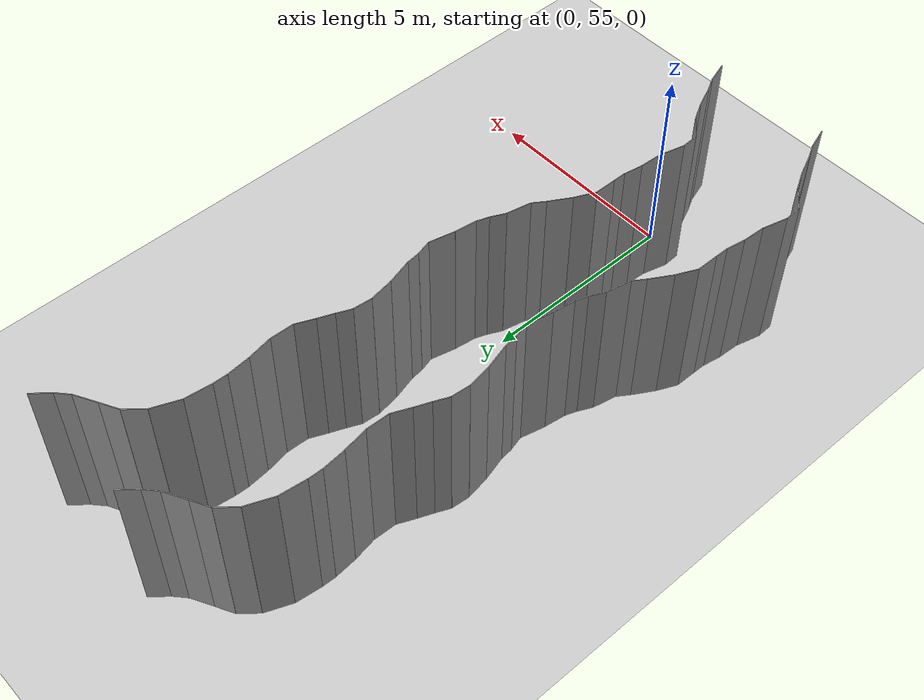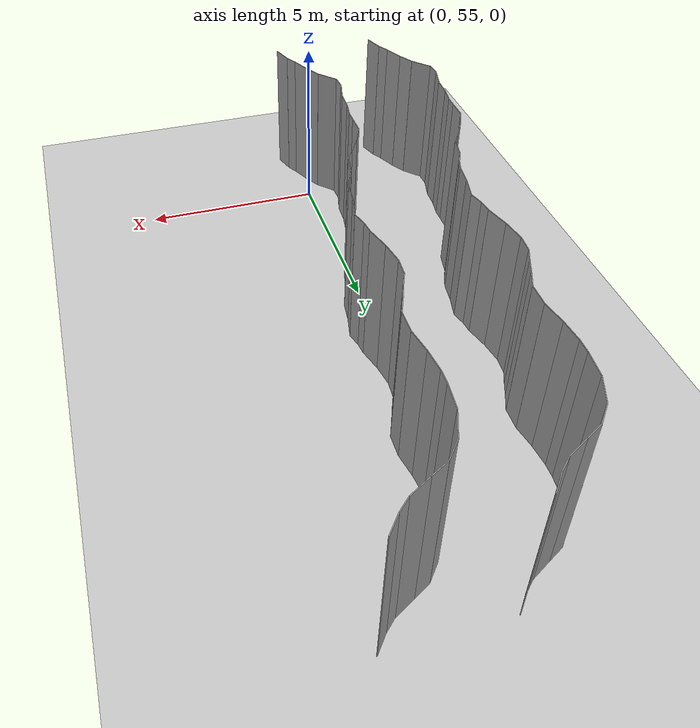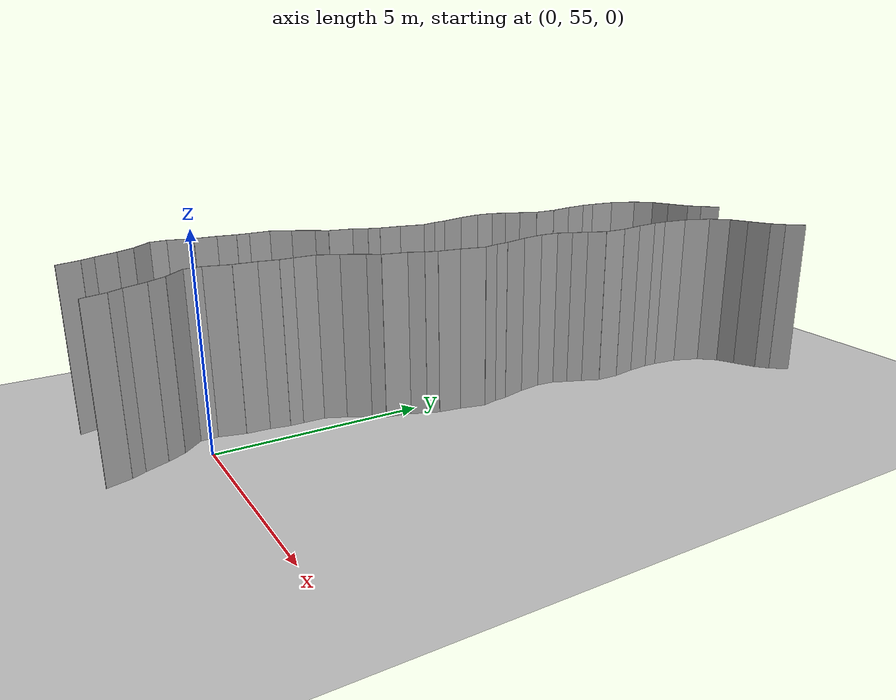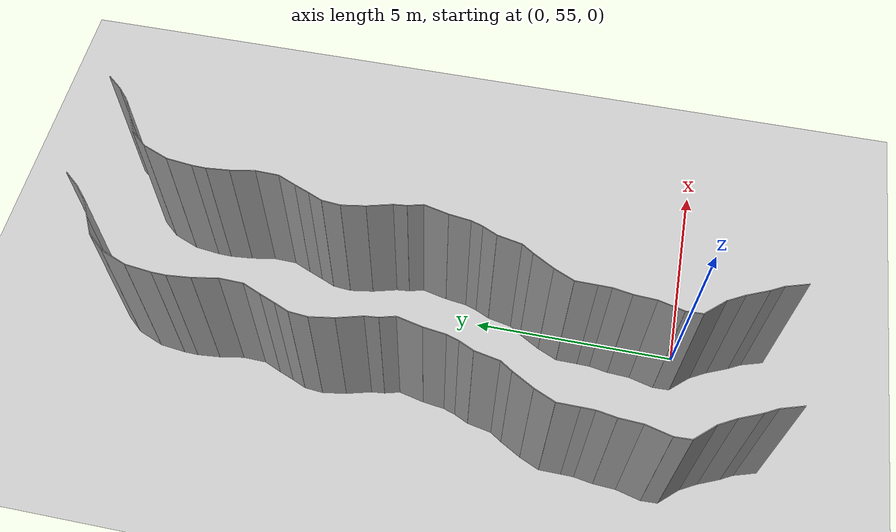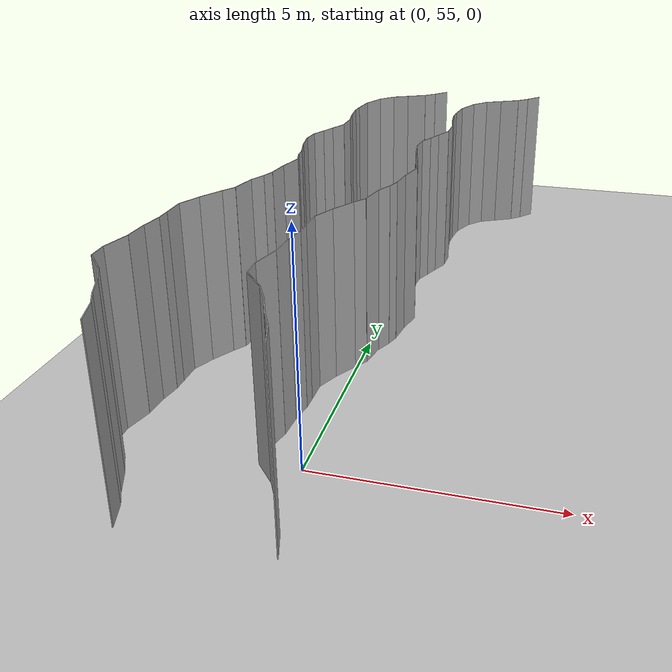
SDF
<sdf version="1.6">
 <world name="default">
  <model name="ground_plane">
   <static>1</static>
   <link name="link">
    <collision name="collision">
     <geometry><plane><normal>0 0 1</normal><size>200 200</size></plane></geometry>
     <surface><friction><ode><mu>100</mu><mu2>50</mu2></ode></friction></surface>
    </collision>
    <visual name="visual">
     <cast_shadows>0</cast_shadows>
     <geometry><plane><normal>0 0 1</normal><size>200 200</size></plane></geometry>
     <material>
      <script><uri>file://media/materials/scripts/gazebo.material</uri><name>Gazebo/Grey</name></script>
     </material>
    </visual>
   </link>
   <pose>0 100 0 0 -0 0</pose>
  </model>
  <model name="wall_224">
   <static>1</static>
   <pose>-2.7112884319761017 52.99044886348012 2 0 0 0.3077980522729062</pose>
   <link name="link">
    <collision name="collision"><geometry><box><size>0.02 0.574093118812 4</size></box></geometry></collision>
    <visual name="visual">
     <material>
      <script><name>Gazebo/Grey</name><uri>file://media/materials/scripts/gazebo.material</uri></script>
     </material>
     <geometry><box><size>0.02 0.574093118812 4</size></box></geometry>
    </visual>
   </link>
  </model>
  <model name="wall_225">
   <static>1</static>
   <pose>0.2887115680238983 52.99044886348012 2 0 0 0.3077980522729062</pose>
   <link name="link">
    <collision name="collision"><geometry><box><size>0.02 0.574093118812 4</size></box></geometry></collision>
    <visual name="visual">
     <material>
      <script><name>Gazebo/Grey</name><uri>file://media/materials/scripts/gazebo.material</uri></script>
     </material>
     <geometry><box><size>0.02 0.574093118812 4</size></box></geometry>
    </visual>
   </link>
  </model>
  <model name="wall_226">
   <static>1</static>
   <pose>-2.8820492464547223 53.41816260994193 2 0 0 0.4979007876658691</pose>
   <link name="link">
    <collision name="collision"><geometry><box><size>0.02 0.350921448242 4</size></box></geometry></collision>
    <visual name="visual">
     <material>
      <script><name>Gazebo/Grey</name><uri>file://media/materials/scripts/gazebo.material</uri></script>
     </material>
     <geometry><box><size>0.02 0.350921448242 4</size></box></geometry>
    </visual>
   </link>
  </model>
  <model name="wall_227">
   <static>1</static>
   <pose>0.11795075354527773 53.41816260994193 2 0 0 0.4979007876658691</pose>
   <link name="link">
    <collision name="collision"><geometry><box><size>0.02 0.350921448242 4</size></box></geometry></collision>
    <visual name="visual">
     <material>
      <script><name>Gazebo/Grey</name><uri>file://media/materials/scripts/gazebo.material</uri></script>
     </material>
     <geometry><box><size>0.02 0.350921448242 4</size></box></geometry>
    </visual>
   </link>
  </model>
  <model name="wall_228">
   <static>1</static>
   <pose>-3.08108640671318 53.83688462292239 2 0 0 0.410801673481624</pose>
   <link name="link">
    <collision name="collision"><geometry><box><size>0.02 0.577147061863 4</size></box></geometry></collision>
    <visual name="visual">
     <material>
      <script><name>Gazebo/Grey</name><uri>file://media/materials/scripts/gazebo.material</uri></script>
     </material>
     <geometry><box><size>0.02 0.577147061863 4</size></box></geometry>
    </visual>
   </link>
  </model>
  <model name="wall_229">
   <static>1</static>
   <pose>-0.08108640671318001 53.83688462292239 2 0 0 0.410801673481624</pose>
   <link name="link">
    <collision name="collision"><geometry><box><size>0.02 0.577147061863 4</size></box></geometry></collision>
    <visual name="visual">
     <material>
      <script><name>Gazebo/Grey</name><uri>file://media/materials/scripts/gazebo.material</uri></script>
     </material>
     <geometry><box><size>0.02 0.577147061863 4</size></box></geometry>
    </visual>
   </link>
  </model>
  <model name="wall_230">
   <static>1</static>
   <pose>-3.310636893514959 54.30666240845624 2 0 0 0.5082255924668878</pose>
   <link name="link">
    <collision name="collision"><geometry><box><size>0.02 0.469805615942 4</size></box></geometry></collision>
    <visual name="visual">
     <material>
      <script><name>Gazebo/Grey</name><uri>file://media/materials/scripts/gazebo.material</uri></script>
     </material>
     <geometry><box><size>0.02 0.469805615942 4</size></box></geometry>
    </visual>
   </link>
  </model>
  <model name="wall_231">
   <static>1</static>
   <pose>-0.31063689351495904 54.30666240845624 2 0 0 0.5082255924668878</pose>
   <link name="link">
    <collision name="collision"><geometry><box><size>0.02 0.469805615942 4</size></box></geometry></collision>
    <visual name="visual">
     <material>
      <script><name>Gazebo/Grey</name><uri>file://media/materials/scripts/gazebo.material</uri></script>
     </material>
     <geometry><box><size>0.02 0.469805615942 4</size></box></geometry>
    </visual>
   </link>
  </model>
  <model name="wall_232">
   <static>1</static>
   <pose>-3.6374552203267245 54.74498991162724 2 0 0 0.7391898124307593</pose>
   <link name="link">
    <collision name="collision"><geometry><box><size>0.02 0.630878487954 4</size></box></geometry></collision>
    <visual name="visual">
     <material>
      <script><name>Gazebo/Grey</name><uri>file://media/materials/scripts/gazebo.material</uri></script>
     </material>
     <geometry><box><size>0.02 0.630878487954 4</size></box></geometry>
    </visual>
   </link>
  </model>
  <model name="wall_233">
   <static>1</static>
   <pose>-0.6374552203267245 54.74498991162724 2 0 0 0.7391898124307593</pose>
   <link name="link">
    <collision name="collision"><geometry><box><size>0.02 0.630878487954 4</size></box></geometry></collision>
    <visual name="visual">
     <material>
      <script><name>Gazebo/Grey</name><uri>file://media/materials/scripts/gazebo.material</uri></script>
     </material>
     <geometry><box><size>0.02 0.630878487954 4</size></box></geometry>
    </visual>
   </link>
  </model>
  <model name="wall_234">
   <static>1</static>
   <pose>-3.857603782859765 55.18072282562816 2 0 0 0.037690852234599385</pose>
   <link name="link">
    <collision name="collision"><geometry><box><size>0.02 0.405525415166 4</size></box></geometry></collision>
    <visual name="visual">
     <material>
      <script><name>Gazebo/Grey</name><uri>file://media/materials/scripts/gazebo.material</uri></script>
     </material>
     <geometry><box><size>0.02 0.405525415166 4</size></box></geometry>
    </visual>
   </link>
  </model>
  <model name="wall_235">
   <static>1</static>
   <pose>-0.8576037828597651 55.18072282562816 2 0 0 0.037690852234599385</pose>
   <link name="link">
    <collision name="collision"><geometry><box><size>0.02 0.405525415166 4</size></box></geometry></collision>
    <visual name="visual">
     <material>
      <script><name>Gazebo/Grey</name><uri>file://media/materials/scripts/gazebo.material</uri></script>
     </material>
     <geometry><box><size>0.02 0.405525415166 4</size></box></geometry>
    </visual>
   </link>
  </model>
  <model name="wall_236">
   <static>1</static>
   <pose>-3.7863035198835884 55.69015324747741 2 0 0 -0.2518315468236311</pose>
   <link name="link">
    <collision name="collision"><geometry><box><size>0.02 0.633608944875 4</size></box></geometry></collision>
    <visual name="visual">
     <material>
      <script><name>Gazebo/Grey</name><uri>file://media/materials/scripts/gazebo.material</uri></script>
     </material>
     <geometry><box><size>0.02 0.633608944875 4</size></box></geometry>
    </visual>
   </link>
  </model>
  <model name="wall_237">
   <static>1</static>
   <pose>-0.7863035198835884 55.69015324747741 2 0 0 -0.2518315468236311</pose>
   <link name="link">
    <collision name="collision"><geometry><box><size>0.02 0.633608944875 4</size></box></geometry></collision>
    <visual name="visual">
     <material>
      <script><name>Gazebo/Grey</name><uri>file://media/materials/scripts/gazebo.material</uri></script>
     </material>
     <geometry><box><size>0.02 0.633608944875 4</size></box></geometry>
    </visual>
   </link>
  </model>
  <model name="wall_238">
   <static>1</static>
   <pose>-3.691385216079369 56.27369700203648 2 0 0 -0.05767251540911327</pose>
   <link name="link">
    <collision name="collision"><geometry><box><size>0.02 0.554385790955 4</size></box></geometry></collision>
    <visual name="visual">
     <material>
      <script><name>Gazebo/Grey</name><uri>file://media/materials/scripts/gazebo.material</uri></script>
     </material>
     <geometry><box><size>0.02 0.554385790955 4</size></box></geometry>
    </visual>
   </link>
  </model>
  <model name="wall_239">
   <static>1</static>
   <pose>-0.691385216079369 56.27369700203648 2 0 0 -0.05767251540911327</pose>
   <link name="link">
    <collision name="collision"><geometry><box><size>0.02 0.554385790955 4</size></box></geometry></collision>
    <visual name="visual">
     <material>
      <script><name>Gazebo/Grey</name><uri>file://media/materials/scripts/gazebo.material</uri></script>
     </material>
     <geometry><box><size>0.02 0.554385790955 4</size></box></geometry>
    </visual>
   </link>
  </model>
  <model name="wall_240">
   <static>1</static>
   <pose>-3.634591180780093 56.78347924209213 2 0 0 -0.17338180073968998</pose>
   <link name="link">
    <collision name="collision"><geometry><box><size>0.02 0.473195027432 4</size></box></geometry></collision>
    <visual name="visual">
     <material>
      <script><name>Gazebo/Grey</name><uri>file://media/materials/scripts/gazebo.material</uri></script>
     </material>
     <geometry><box><size>0.02 0.473195027432 4</size></box></geometry>
    </visual>
   </link>
  </model>
  <model name="wall_241">
   <static>1</static>
   <pose>-0.634591180780093 56.78347924209213 2 0 0 -0.17338180073968998</pose>
   <link name="link">
    <collision name="collision"><geometry><box><size>0.02 0.473195027432 4</size></box></geometry></collision>
    <visual name="visual">
     <material>
      <script><name>Gazebo/Grey</name><uri>file://media/materials/scripts/gazebo.material</uri></script>
     </material>
     <geometry><box><size>0.02 0.473195027432 4</size></box></geometry>
    </visual>
   </link>
  </model>
  <model name="wall_242">
   <static>1</static>
   <pose>-3.5911617262335107 57.17698364579031 2 0 0 -0.016283395607087015</pose>
   <link name="link">
    <collision name="collision"><geometry><box><size>0.02 0.320950946163 4</size></box></geometry></collision>
    <visual name="visual">
     <material>
      <script><name>Gazebo/Grey</name><uri>file://media/materials/scripts/gazebo.material</uri></script>
     </material>
     <geometry><box><size>0.02 0.320950946163 4</size></box></geometry>
    </visual>
   </link>
  </model>
  <model name="wall_243">
   <static>1</static>
   <pose>-0.5911617262335107 57.17698364579031 2 0 0 -0.016283395607087015</pose>
   <link name="link">
    <collision name="collision"><geometry><box><size>0.02 0.320950946163 4</size></box></geometry></collision>
    <visual name="visual">
     <material>
      <script><name>Gazebo/Grey</name><uri>file://media/materials/scripts/gazebo.material</uri></script>
     </material>
     <geometry><box><size>0.02 0.320950946163 4</size></box></geometry>
    </visual>
   </link>
  </model>
  <model name="wall_244">
   <static>1</static>
   <pose>-3.5860363722325888 57.60333890756254 2 0 0 -0.009448285281180439</pose>
   <link name="link">
    <collision name="collision"><geometry><box><size>0.02 0.531825864244 4</size></box></geometry></collision>
    <visual name="visual">
     <material>
      <script><name>Gazebo/Grey</name><uri>file://media/materials/scripts/gazebo.material</uri></script>
     </material>
     <geometry><box><size>0.02 0.531825864244 4</size></box></geometry>
    </visual>
   </link>
  </model>
  <model name="wall_245">
   <static>1</static>
   <pose>-0.5860363722325888 57.60333890756254 2 0 0 -0.009448285281180439</pose>
   <link name="link">
    <collision name="collision"><geometry><box><size>0.02 0.531825864244 4</size></box></geometry></collision>
    <visual name="visual">
     <material>
      <script><name>Gazebo/Grey</name><uri>file://media/materials/scripts/gazebo.material</uri></script>
     </material>
     <geometry><box><size>0.02 0.531825864244 4</size></box></geometry>
    </visual>
   </link>
  </model>
  <model name="wall_246">
   <static>1</static>
   <pose>-3.4709163207303644 58.11590810492566 2 0 0 -0.42825845644982063</pose>
   <link name="link">
    <collision name="collision"><geometry><box><size>0.02 0.542312290975 4</size></box></geometry></collision>
    <visual name="visual">
     <material>
      <script><name>Gazebo/Grey</name><uri>file://media/materials/scripts/gazebo.material</uri></script>
     </material>
     <geometry><box><size>0.02 0.542312290975 4</size></box></geometry>
    </visual>
   </link>
  </model>
  <model name="wall_247">
   <static>1</static>
   <pose>-0.4709163207303644 58.11590810492566 2 0 0 -0.42825845644982063</pose>
   <link name="link">
    <collision name="collision"><geometry><box><size>0.02 0.542312290975 4</size></box></geometry></collision>
    <visual name="visual">
     <material>
      <script><name>Gazebo/Grey</name><uri>file://media/materials/scripts/gazebo.material</uri></script>
     </material>
     <geometry><box><size>0.02 0.542312290975 4</size></box></geometry>
    </visual>
   </link>
  </model>
  <model name="wall_248">
   <static>1</static>
   <pose>-3.206736656837518 58.61946429317018 2 0 0 -0.533057338590251</pose>
   <link name="link">
    <collision name="collision"><geometry><box><size>0.02 0.596541842168 4</size></box></geometry></collision>
    <visual name="visual">
     <material>
      <script><name>Gazebo/Grey</name><uri>file://media/materials/scripts/gazebo.material</uri></script>
     </material>
     <geometry><box><size>0.02 0.596541842168 4</size></box></geometry>
    </visual>
   </link>
  </model>
  <model name="wall_249">
   <static>1</static>
   <pose>-0.20673665683751796 58.61946429317018 2 0 0 -0.533057338590251</pose>
   <link name="link">
    <collision name="collision"><geometry><box><size>0.02 0.596541842168 4</size></box></geometry></collision>
    <visual name="visual">
     <material>
      <script><name>Gazebo/Grey</name><uri>file://media/materials/scripts/gazebo.material</uri></script>
     </material>
     <geometry><box><size>0.02 0.596541842168 4</size></box></geometry>
    </visual>
   </link>
  </model>
  <model name="wall_250">
   <static>1</static>
   <pose>-2.959384602698114 59.01805470906307 2 0 0 -0.5943843221649174</pose>
   <link name="link">
    <collision name="collision"><geometry><box><size>0.02 0.342072383212 4</size></box></geometry></collision>
    <visual name="visual">
     <material>
      <script><name>Gazebo/Grey</name><uri>file://media/materials/scripts/gazebo.material</uri></script>
     </material>
     <geometry><box><size>0.02 0.342072383212 4</size></box></geometry>
    </visual>
   </link>
  </model>
  <model name="wall_251">
   <static>1</static>
   <pose>0.0406153973018859 59.01805470906307 2 0 0 -0.5943843221649174</pose>
   <link name="link">
    <collision name="collision"><geometry><box><size>0.02 0.342072383212 4</size></box></geometry></collision>
    <visual name="visual">
     <material>
      <script><name>Gazebo/Grey</name><uri>file://media/materials/scripts/gazebo.material</uri></script>
     </material>
     <geometry><box><size>0.02 0.342072383212 4</size></box></geometry>
    </visual>
   </link>
  </model>
  <model name="wall_252">
   <static>1</static>
   <pose>-2.800718369223697 59.46118328672669 2 0 0 -0.2056785036634332</pose>
   <link name="link">
    <collision name="collision"><geometry><box><size>0.02 0.615832557331 4</size></box></geometry></collision>
    <visual name="visual">
     <material>
      <script><name>Gazebo/Grey</name><uri>file://media/materials/scripts/gazebo.material</uri></script>
     </material>
     <geometry><box><size>0.02 0.615832557331 4</size></box></geometry>
    </visual>
   </link>
  </model>
  <model name="wall_253">
   <static>1</static>
   <pose>0.1992816307763028 59.46118328672669 2 0 0 -0.2056785036634332</pose>
   <link name="link">
    <collision name="collision"><geometry><box><size>0.02 0.615832557331 4</size></box></geometry></collision>
    <visual name="visual">
     <material>
      <script><name>Gazebo/Grey</name><uri>file://media/materials/scripts/gazebo.material</uri></script>
     </material>
     <geometry><box><size>0.02 0.615832557331 4</size></box></geometry>
    </visual>
   </link>
  </model>
  <model name="wall_254">
   <static>1</static>
   <pose>-2.653758152327903 59.93871657453272 2 0 0 -0.445407127317109</pose>
   <link name="link">
    <collision name="collision"><geometry><box><size>0.02 0.390292942407 4</size></box></geometry></collision>
    <visual name="visual">
     <material>
      <script><name>Gazebo/Grey</name><uri>file://media/materials/scripts/gazebo.material</uri></script>
     </material>
     <geometry><box><size>0.02 0.390292942407 4</size></box></geometry>
    </visual>
   </link>
  </model>
  <model name="wall_255">
   <static>1</static>
   <pose>0.346241847672097 59.93871657453272 2 0 0 -0.445407127317109</pose>
   <link name="link">
    <collision name="collision"><geometry><box><size>0.02 0.390292942407 4</size></box></geometry></collision>
    <visual name="visual">
     <material>
      <script><name>Gazebo/Grey</name><uri>file://media/materials/scripts/gazebo.material</uri></script>
     </material>
     <geometry><box><size>0.02 0.390292942407 4</size></box></geometry>
    </visual>
   </link>
  </model>
  <model name="wall_256">
   <static>1</static>
   <pose>-2.519796266483903 60.26126387593638 2 0 0 -0.3283392733691225</pose>
   <link name="link">
    <collision name="collision"><geometry><box><size>0.02 0.309409358786 4</size></box></geometry></collision>
    <visual name="visual">
     <material>
      <script><name>Gazebo/Grey</name><uri>file://media/materials/scripts/gazebo.material</uri></script>
     </material>
     <geometry><box><size>0.02 0.309409358786 4</size></box></geometry>
    </visual>
   </link>
  </model>
  <model name="wall_257">
   <static>1</static>
   <pose>0.48020373351609713 60.26126387593638 2 0 0 -0.3283392733691225</pose>
   <link name="link">
    <collision name="collision"><geometry><box><size>0.02 0.309409358786 4</size></box></geometry></collision>
    <visual name="visual">
     <material>
      <script><name>Gazebo/Grey</name><uri>file://media/materials/scripts/gazebo.material</uri></script>
     </material>
     <geometry><box><size>0.02 0.309409358786 4</size></box></geometry>
    </visual>
   </link>
  </model>
  <model name="wall_258">
   <static>1</static>
   <pose>-2.4327013484580773 60.67977291758385 2 0 0 -0.13591300641459278</pose>
   <link name="link">
    <collision name="collision"><geometry><box><size>0.02 0.549202348511 4</size></box></geometry></collision>
    <visual name="visual">
     <material>
      <script><name>Gazebo/Grey</name><uri>file://media/materials/scripts/gazebo.material</uri></script>
     </material>
     <geometry><box><size>0.02 0.549202348511 4</size></box></geometry>
    </visual>
   </link>
  </model>
  <model name="wall_259">
   <static>1</static>
   <pose>0.5672986515419227 60.67977291758385 2 0 0 -0.13591300641459278</pose>
   <link name="link">
    <collision name="collision"><geometry><box><size>0.02 0.549202348511 4</size></box></geometry></collision>
    <visual name="visual">
     <material>
      <script><name>Gazebo/Grey</name><uri>file://media/materials/scripts/gazebo.material</uri></script>
     </material>
     <geometry><box><size>0.02 0.549202348511 4</size></box></geometry>
    </visual>
   </link>
  </model>
  <model name="wall_260">
   <static>1</static>
   <pose>-2.3229374687029507 61.26171844846167 2 0 0 -0.2300037613192936</pose>
   <link name="link">
    <collision name="collision"><geometry><box><size>0.02 0.636515737116 4</size></box></geometry></collision>
    <visual name="visual">
     <material>
      <script><name>Gazebo/Grey</name><uri>file://media/materials/scripts/gazebo.material</uri></script>
     </material>
     <geometry><box><size>0.02 0.636515737116 4</size></box></geometry>
    </visual>
   </link>
  </model>
  <model name="wall_261">
   <static>1</static>
   <pose>0.6770625312970493 61.26171844846167 2 0 0 -0.2300037613192936</pose>
   <link name="link">
    <collision name="collision"><geometry><box><size>0.02 0.636515737116 4</size></box></geometry></collision>
    <visual name="visual">
     <material>
      <script><name>Gazebo/Grey</name><uri>file://media/materials/scripts/gazebo.material</uri></script>
     </material>
     <geometry><box><size>0.02 0.636515737116 4</size></box></geometry>
    </visual>
   </link>
  </model>
  <model name="wall_262">
   <static>1</static>
   <pose>-2.301389213945857 61.75786048528464 2 0 0 0.26729572287176045</pose>
   <link name="link">
    <collision name="collision"><geometry><box><size>0.02 0.386246766094 4</size></box></geometry></collision>
    <visual name="visual">
     <material>
      <script><name>Gazebo/Grey</name><uri>file://media/materials/scripts/gazebo.material</uri></script>
     </material>
     <geometry><box><size>0.02 0.386246766094 4</size></box></geometry>
    </visual>
   </link>
  </model>
  <model name="wall_263">
   <static>1</static>
   <pose>0.6986107860541431 61.75786048528464 2 0 0 0.26729572287176045</pose>
   <link name="link">
    <collision name="collision"><geometry><box><size>0.02 0.386246766094 4</size></box></geometry></collision>
    <visual name="visual">
     <material>
      <script><name>Gazebo/Grey</name><uri>file://media/materials/scripts/gazebo.material</uri></script>
     </material>
     <geometry><box><size>0.02 0.386246766094 4</size></box></geometry>
    </visual>
   </link>
  </model>
  <model name="wall_264">
   <static>1</static>
   <pose>-2.3691473202506645 62.10599315950132 2 0 0 0.1031100675275079</pose>
   <link name="link">
    <collision name="collision"><geometry><box><size>0.02 0.325463291569 4</size></box></geometry></collision>
    <visual name="visual">
     <material>
      <script><name>Gazebo/Grey</name><uri>file://media/materials/scripts/gazebo.material</uri></script>
     </material>
     <geometry><box><size>0.02 0.325463291569 4</size></box></geometry>
    </visual>
   </link>
  </model>
  <model name="wall_265">
   <static>1</static>
   <pose>0.6308526797493355 62.10599315950132 2 0 0 0.1031100675275079</pose>
   <link name="link">
    <collision name="collision"><geometry><box><size>0.02 0.325463291569 4</size></box></geometry></collision>
    <visual name="visual">
     <material>
      <script><name>Gazebo/Grey</name><uri>file://media/materials/scripts/gazebo.material</uri></script>
     </material>
     <geometry><box><size>0.02 0.325463291569 4</size></box></geometry>
    </visual>
   </link>
  </model>
  <model name="wall_266">
   <static>1</static>
   <pose>-2.4693975414016895 62.57392255096541 2 0 0 0.2663408540372328</pose>
   <link name="link">
    <collision name="collision"><geometry><box><size>0.02 0.634496117576 4</size></box></geometry></collision>
    <visual name="visual">
     <material>
      <script><name>Gazebo/Grey</name><uri>file://media/materials/scripts/gazebo.material</uri></script>
     </material>
     <geometry><box><size>0.02 0.634496117576 4</size></box></geometry>
    </visual>
   </link>
  </model>
  <model name="wall_267">
   <static>1</static>
   <pose>0.5306024585983105 62.57392255096541 2 0 0 0.2663408540372328</pose>
   <link name="link">
    <collision name="collision"><geometry><box><size>0.02 0.634496117576 4</size></box></geometry></collision>
    <visual name="visual">
     <material>
      <script><name>Gazebo/Grey</name><uri>file://media/materials/scripts/gazebo.material</uri></script>
     </material>
     <geometry><box><size>0.02 0.634496117576 4</size></box></geometry>
    </visual>
   </link>
  </model>
  <model name="wall_268">
   <static>1</static>
   <pose>-2.599981883435476 63.17357284291427 2 0 0 0.1590190840215625</pose>
   <link name="link">
    <collision name="collision"><geometry><box><size>0.02 0.594679533494 4</size></box></geometry></collision>
    <visual name="visual">
     <material>
      <script><name>Gazebo/Grey</name><uri>file://media/materials/scripts/gazebo.material</uri></script>
     </material>
     <geometry><box><size>0.02 0.594679533494 4</size></box></geometry>
    </visual>
   </link>
  </model>
  <model name="wall_269">
   <static>1</static>
   <pose>0.400018116564524 63.17357284291427 2 0 0 0.1590190840215625</pose>
   <link name="link">
    <collision name="collision"><geometry><box><size>0.02 0.594679533494 4</size></box></geometry></collision>
    <visual name="visual">
     <material>
      <script><name>Gazebo/Grey</name><uri>file://media/materials/scripts/gazebo.material</uri></script>
     </material>
     <geometry><box><size>0.02 0.594679533494 4</size></box></geometry>
    </visual>
   </link>
  </model>
  <model name="wall_270">
   <static>1</static>
   <pose>-2.626235936692153 63.69776881135278 2 0 0 -0.0900804710850716</pose>
   <link name="link">
    <collision name="collision"><geometry><box><size>0.02 0.46309303584 4</size></box></geometry></collision>
    <visual name="visual">
     <material>
      <script><name>Gazebo/Grey</name><uri>file://media/materials/scripts/gazebo.material</uri></script>
     </material>
     <geometry><box><size>0.02 0.46309303584 4</size></box></geometry>
    </visual>
   </link>
  </model>
  <model name="wall_271">
   <static>1</static>
   <pose>0.37376406330784695 63.69776881135278 2 0 0 -0.0900804710850716</pose>
   <link name="link">
    <collision name="collision"><geometry><box><size>0.02 0.46309303584 4</size></box></geometry></collision>
    <visual name="visual">
     <material>
      <script><name>Gazebo/Grey</name><uri>file://media/materials/scripts/gazebo.material</uri></script>
     </material>
     <geometry><box><size>0.02 0.46309303584 4</size></box></geometry>
    </visual>
   </link>
  </model>
  <model name="wall_272">
   <static>1</static>
   <pose>-2.5301620501391002 64.10164025256645 2 0 0 -0.4097011211495241</pose>
   <link name="link">
    <collision name="collision"><geometry><box><size>0.02 0.377793695967 4</size></box></geometry></collision>
    <visual name="visual">
     <material>
      <script><name>Gazebo/Grey</name><uri>file://media/materials/scripts/gazebo.material</uri></script>
     </material>
     <geometry><box><size>0.02 0.377793695967 4</size></box></geometry>
    </visual>
   </link>
  </model>
  <model name="wall_273">
   <static>1</static>
   <pose>0.4698379498608998 64.10164025256645 2 0 0 -0.4097011211495241</pose>
   <link name="link">
    <collision name="collision"><geometry><box><size>0.02 0.377793695967 4</size></box></geometry></collision>
    <visual name="visual">
     <material>
      <script><name>Gazebo/Grey</name><uri>file://media/materials/scripts/gazebo.material</uri></script>
     </material>
     <geometry><box><size>0.02 0.377793695967 4</size></box></geometry>
    </visual>
   </link>
  </model>
  <model name="wall_274">
   <static>1</static>
   <pose>-2.378992303824315 64.462226002366 2 0 0 -0.3850847081811025</pose>
   <link name="link">
    <collision name="collision"><geometry><box><size>0.02 0.404248528537 4</size></box></geometry></collision>
    <visual name="visual">
     <material>
      <script><name>Gazebo/Grey</name><uri>file://media/materials/scripts/gazebo.material</uri></script>
     </material>
     <geometry><box><size>0.02 0.404248528537 4</size></box></geometry>
    </visual>
   </link>
  </model>
  <model name="wall_275">
   <static>1</static>
   <pose>0.6210076961756852 64.462226002366 2 0 0 -0.3850847081811025</pose>
   <link name="link">
    <collision name="collision"><geometry><box><size>0.02 0.404248528537 4</size></box></geometry></collision>
    <visual name="visual">
     <material>
      <script><name>Gazebo/Grey</name><uri>file://media/materials/scripts/gazebo.material</uri></script>
     </material>
     <geometry><box><size>0.02 0.404248528537 4</size></box></geometry>
    </visual>
   </link>
  </model>
  <model name="wall_276">
   <static>1</static>
   <pose>-2.207360492484001 64.86942292507347 2 0 0 -0.41054245046130927</pose>
   <link name="link">
    <collision name="collision"><geometry><box><size>0.02 0.479602644133 4</size></box></geometry></collision>
    <visual name="visual">
     <material>
      <script><name>Gazebo/Grey</name><uri>file://media/materials/scripts/gazebo.material</uri></script>
     </material>
     <geometry><box><size>0.02 0.479602644133 4</size></box></geometry>
    </visual>
   </link>
  </model>
  <model name="wall_277">
   <static>1</static>
   <pose>0.7926395075159989 64.86942292507347 2 0 0 -0.41054245046130927</pose>
   <link name="link">
    <collision name="collision"><geometry><box><size>0.02 0.479602644133 4</size></box></geometry></collision>
    <visual name="visual">
     <material>
      <script><name>Gazebo/Grey</name><uri>file://media/materials/scripts/gazebo.material</uri></script>
     </material>
     <geometry><box><size>0.02 0.479602644133 4</size></box></geometry>
    </visual>
   </link>
  </model>
  <model name="wall_278">
   <static>1</static>
   <pose>-2.1032744750363084 65.37776119511881 2 0 0 -0.029041234702900053</pose>
   <link name="link">
    <collision name="collision"><geometry><box><size>0.02 0.577170109259 4</size></box></geometry></collision>
    <visual name="visual">
     <material>
      <script><name>Gazebo/Grey</name><uri>file://media/materials/scripts/gazebo.material</uri></script>
     </material>
     <geometry><box><size>0.02 0.577170109259 4</size></box></geometry>
    </visual>
   </link>
  </model>
  <model name="wall_279">
   <static>1</static>
   <pose>0.8967255249636916 65.37776119511881 2 0 0 -0.029041234702900053</pose>
   <link name="link">
    <collision name="collision"><geometry><box><size>0.02 0.577170109259 4</size></box></geometry></collision>
    <visual name="visual">
     <material>
      <script><name>Gazebo/Grey</name><uri>file://media/materials/scripts/gazebo.material</uri></script>
     </material>
     <geometry><box><size>0.02 0.577170109259 4</size></box></geometry>
    </visual>
   </link>
  </model>
  <model name="wall_280">
   <static>1</static>
   <pose>-2.148960926429154 65.97029814664572 2 0 0 0.175967085116457</pose>
   <link name="link">
    <collision name="collision"><geometry><box><size>0.02 0.617685653914 4</size></box></geometry></collision>
    <visual name="visual">
     <material>
      <script><name>Gazebo/Grey</name><uri>file://media/materials/scripts/gazebo.material</uri></script>
     </material>
     <geometry><box><size>0.02 0.617685653914 4</size></box></geometry>
    </visual>
   </link>
  </model>
  <model name="wall_281">
   <static>1</static>
   <pose>0.851039073570846 65.97029814664572 2 0 0 0.175967085116457</pose>
   <link name="link">
    <collision name="collision"><geometry><box><size>0.02 0.617685653914 4</size></box></geometry></collision>
    <visual name="visual">
     <material>
      <script><name>Gazebo/Grey</name><uri>file://media/materials/scripts/gazebo.material</uri></script>
     </material>
     <geometry><box><size>0.02 0.617685653914 4</size></box></geometry>
    </visual>
   </link>
  </model>
  <model name="wall_282">
   <static>1</static>
   <pose>-2.229208758950706 66.55922228616103 2 0 0 0.09165625582749211</pose>
   <link name="link">
    <collision name="collision"><geometry><box><size>0.02 0.572102508961 4</size></box></geometry></collision>
    <visual name="visual">
     <material>
      <script><name>Gazebo/Grey</name><uri>file://media/materials/scripts/gazebo.material</uri></script>
     </material>
     <geometry><box><size>0.02 0.572102508961 4</size></box></geometry>
    </visual>
   </link>
  </model>
  <model name="wall_283">
   <static>1</static>
   <pose>0.7707912410492939 66.55922228616103 2 0 0 0.09165625582749211</pose>
   <link name="link">
    <collision name="collision"><geometry><box><size>0.02 0.572102508961 4</size></box></geometry></collision>
    <visual name="visual">
     <material>
      <script><name>Gazebo/Grey</name><uri>file://media/materials/scripts/gazebo.material</uri></script>
     </material>
     <geometry><box><size>0.02 0.572102508961 4</size></box></geometry>
    </visual>
   </link>
  </model>
  <model name="wall_284">
   <static>1</static>
   <pose>-2.250152451064825 67.01911721016623 2 0 0 -0.029914919194380003</pose>
   <link name="link">
    <collision name="collision"><geometry><box><size>0.02 0.350245442429 4</size></box></geometry></collision>
    <visual name="visual">
     <material>
      <script><name>Gazebo/Grey</name><uri>file://media/materials/scripts/gazebo.material</uri></script>
     </material>
     <geometry><box><size>0.02 0.350245442429 4</size></box></geometry>
    </visual>
   </link>
  </model>
  <model name="wall_285">
   <static>1</static>
   <pose>0.749847548935175 67.01911721016623 2 0 0 -0.029914919194380003</pose>
   <link name="link">
    <collision name="collision"><geometry><box><size>0.02 0.350245442429 4</size></box></geometry></collision>
    <visual name="visual">
     <material>
      <script><name>Gazebo/Grey</name><uri>file://media/materials/scripts/gazebo.material</uri></script>
     </material>
     <geometry><box><size>0.02 0.350245442429 4</size></box></geometry>
    </visual>
   </link>
  </model>
  <model name="wall_286">
   <static>1</static>
   <pose>-2.206443490370852 67.51947781441716 2 0 0 -0.11771043097306907</pose>
   <link name="link">
    <collision name="collision"><geometry><box><size>0.02 0.655166141396 4</size></box></geometry></collision>
    <visual name="visual">
     <material>
      <script><name>Gazebo/Grey</name><uri>file://media/materials/scripts/gazebo.material</uri></script>
     </material>
     <geometry><box><size>0.02 0.655166141396 4</size></box></geometry>
    </visual>
   </link>
  </model>
  <model name="wall_287">
   <static>1</static>
   <pose>0.7935565096291479 67.51947781441716 2 0 0 -0.11771043097306907</pose>
   <link name="link">
    <collision name="collision"><geometry><box><size>0.02 0.655166141396 4</size></box></geometry></collision>
    <visual name="visual">
     <material>
      <script><name>Gazebo/Grey</name><uri>file://media/materials/scripts/gazebo.material</uri></script>
     </material>
     <geometry><box><size>0.02 0.655166141396 4</size></box></geometry>
    </visual>
   </link>
  </model>
  <model name="wall_288">
   <static>1</static>
   <pose>-2.0367302835119565 68.16758365504873 2 0 0 -0.3861724010341158</pose>
   <link name="link">
    <collision name="collision"><geometry><box><size>0.02 0.696900728038 4</size></box></geometry></collision>
    <visual name="visual">
     <material>
      <script><name>Gazebo/Grey</name><uri>file://media/materials/scripts/gazebo.material</uri></script>
     </material>
     <geometry><box><size>0.02 0.696900728038 4</size></box></geometry>
    </visual>
   </link>
  </model>
  <model name="wall_289">
   <static>1</static>
   <pose>0.9632697164880435 68.16758365504873 2 0 0 -0.3861724010341158</pose>
   <link name="link">
    <collision name="collision"><geometry><box><size>0.02 0.696900728038 4</size></box></geometry></collision>
    <visual name="visual">
     <material>
      <script><name>Gazebo/Grey</name><uri>file://media/materials/scripts/gazebo.material</uri></script>
     </material>
     <geometry><box><size>0.02 0.696900728038 4</size></box></geometry>
    </visual>
   </link>
  </model>
  <model name="wall_290">
   <static>1</static>
   <pose>-1.7300699167716045 68.69359185192583 2 0 0 -0.7121071266861326</pose>
   <link name="link">
    <collision name="collision"><geometry><box><size>0.02 0.536914566883 4</size></box></geometry></collision>
    <visual name="visual">
     <material>
      <script><name>Gazebo/Grey</name><uri>file://media/materials/scripts/gazebo.material</uri></script>
     </material>
     <geometry><box><size>0.02 0.536914566883 4</size></box></geometry>
    </visual>
   </link>
  </model>
  <model name="wall_291">
   <static>1</static>
   <pose>1.2699300832283955 68.69359185192583 2 0 0 -0.7121071266861326</pose>
   <link name="link">
    <collision name="collision"><geometry><box><size>0.02 0.536914566883 4</size></box></geometry></collision>
    <visual name="visual">
     <material>
      <script><name>Gazebo/Grey</name><uri>file://media/materials/scripts/gazebo.material</uri></script>
     </material>
     <geometry><box><size>0.02 0.536914566883 4</size></box></geometry>
    </visual>
   </link>
  </model>
  <model name="wall_292">
   <static>1</static>
   <pose>-1.3446017635735625 69.00758467802767 2 0 0 -1.0854926748386668</pose>
   <link name="link">
    <collision name="collision"><geometry><box><size>0.02 0.474939774627 4</size></box></geometry></collision>
    <visual name="visual">
     <material>
      <script><name>Gazebo/Grey</name><uri>file://media/materials/scripts/gazebo.material</uri></script>
     </material>
     <geometry><box><size>0.02 0.474939774627 4</size></box></geometry>
    </visual>
   </link>
  </model>
  <model name="wall_293">
   <static>1</static>
   <pose>1.6553982364264375 69.00758467802767 2 0 0 -1.0854926748386668</pose>
   <link name="link">
    <collision name="collision"><geometry><box><size>0.02 0.474939774627 4</size></box></geometry></collision>
    <visual name="visual">
     <material>
      <script><name>Gazebo/Grey</name><uri>file://media/materials/scripts/gazebo.material</uri></script>
     </material>
     <geometry><box><size>0.02 0.474939774627 4</size></box></geometry>
    </visual>
   </link>
  </model>
  <model name="wall_294">
   <static>1</static>
   <pose>-0.8791804887009849 69.2560995685655 2 0 0 -1.0761477125668548</pose>
   <link name="link">
    <collision name="collision"><geometry><box><size>0.02 0.580299782939 4</size></box></geometry></collision>
    <visual name="visual">
     <material>
      <script><name>Gazebo/Grey</name><uri>file://media/materials/scripts/gazebo.material</uri></script>
     </material>
     <geometry><box><size>0.02 0.580299782939 4</size></box></geometry>
    </visual>
   </link>
  </model>
  <model name="wall_295">
   <static>1</static>
   <pose>2.120819511299015 69.2560995685655 2 0 0 -1.0761477125668548</pose>
   <link name="link">
    <collision name="collision"><geometry><box><size>0.02 0.580299782939 4</size></box></geometry></collision>
    <visual name="visual">
     <material>
      <script><name>Gazebo/Grey</name><uri>file://media/materials/scripts/gazebo.material</uri></script>
     </material>
     <geometry><box><size>0.02 0.580299782939 4</size></box></geometry>
    </visual>
   </link>
  </model>
  <model name="wall_296">
   <static>1</static>
   <pose>-0.4858197403742788 69.51862285828494 2 0 0 -0.8356157026934723</pose>
   <link name="link">
    <collision name="collision"><geometry><box><size>0.02 0.372084987489 4</size></box></geometry></collision>
    <visual name="visual">
     <material>
      <script><name>Gazebo/Grey</name><uri>file://media/materials/scripts/gazebo.material</uri></script>
     </material>
     <geometry><box><size>0.02 0.372084987489 4</size></box></geometry>
    </visual>
   </link>
  </model>
  <model name="wall_297">
   <static>1</static>
   <pose>2.5141802596257214 69.51862285828494 2 0 0 -0.8356157026934723</pose>
   <link name="link">
    <collision name="collision"><geometry><box><size>0.02 0.372084987489 4</size></box></geometry></collision>
    <visual name="visual">
     <material>
      <script><name>Gazebo/Grey</name><uri>file://media/materials/scripts/gazebo.material</uri></script>
     </material>
     <geometry><box><size>0.02 0.372084987489 4</size></box></geometry>
    </visual>
   </link>
  </model>
  <model name="wall_298">
   <static>1</static>
   <pose>-0.1855149009407556 69.8374232489861 2 0 0 -0.6966632824184714</pose>
   <link name="link">
    <collision name="collision"><geometry><box><size>0.02 0.505921565152 4</size></box></geometry></collision>
    <visual name="visual">
     <material>
      <script><name>Gazebo/Grey</name><uri>file://media/materials/scripts/gazebo.material</uri></script>
     </material>
     <geometry><box><size>0.02 0.505921565152 4</size></box></geometry>
    </visual>
   </link>
  </model>
  <model name="wall_299">
   <static>1</static>
   <pose>2.8144850990592443 69.8374232489861 2 0 0 -0.6966632824184714</pose>
   <link name="link">
    <collision name="collision"><geometry><box><size>0.02 0.505921565152 4</size></box></geometry></collision>
    <visual name="visual">
     <material>
      <script><name>Gazebo/Grey</name><uri>file://media/materials/scripts/gazebo.material</uri></script>
     </material>
     <geometry><box><size>0.02 0.505921565152 4</size></box></geometry>
    </visual>
   </link>
  </model>
 </world>
</sdf>
